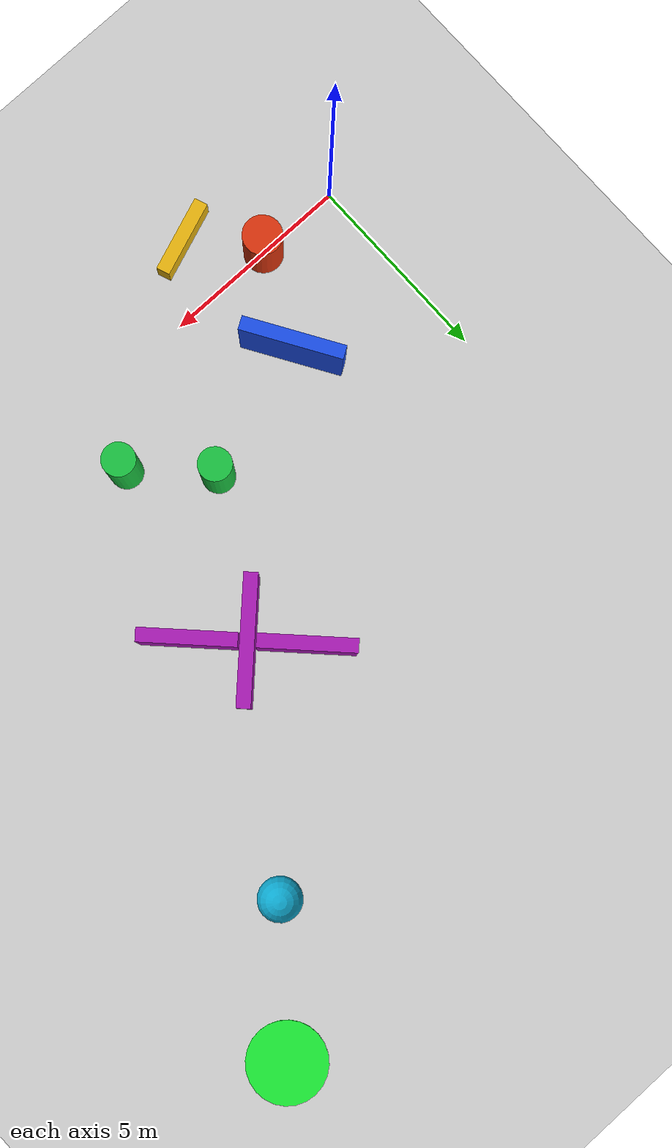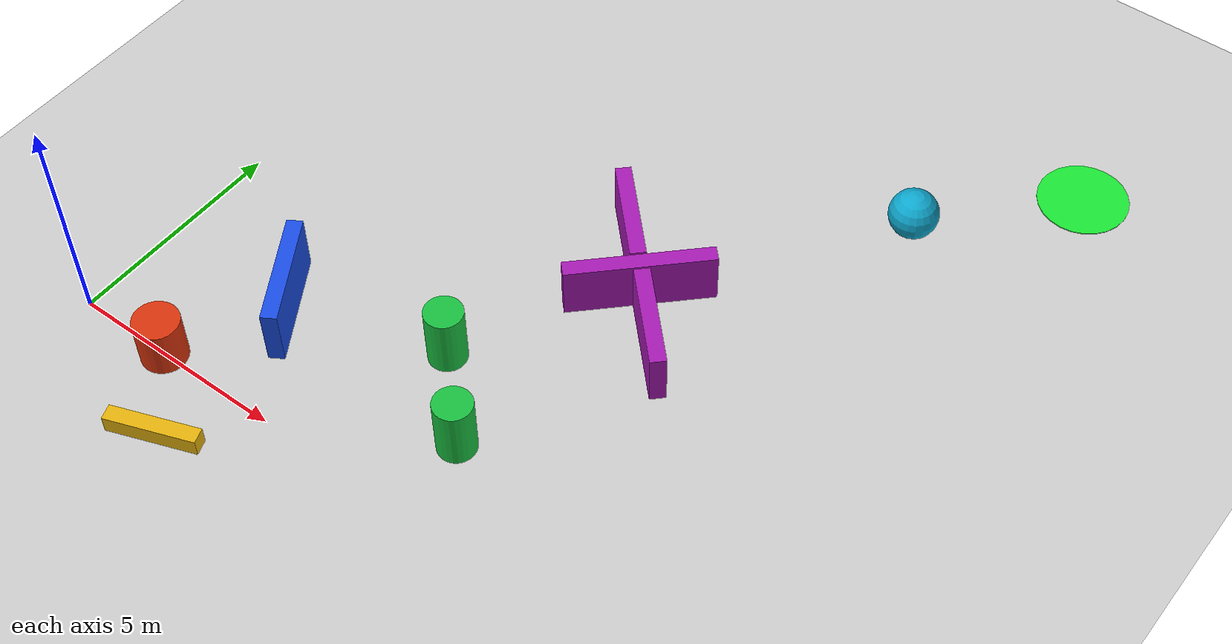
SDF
<?xml version="1.0"?>
<sdf version="1.6"><world name="stress_course">
  <include><uri>model://ground_plane</uri></include><include><uri>model://sun</uri></include>
  <physics type="ode"><real_time_update_rate>500</real_time_update_rate></physics>
  <gui><camera name="overview"><pose>-7 -11 16 0 0.72 0.62</pose><view_controller>orbit</view_controller></camera></gui>
  <model name="round_boulder"><static>true</static><pose>2.2 0 0.55 0 0 0</pose><link name="link">
    <collision name="collision"><geometry><cylinder><radius>0.5</radius><length>1.1</length></cylinder></geometry></collision>
    <visual name="visual"><geometry><cylinder><radius>0.5</radius><length>1.1</length></cylinder></geometry><material><ambient>0.85 0.2 0.05 1</ambient><diffuse>0.85 0.2 0.05 1</diffuse></material></visual>
  </link></model>
  <model name="low_curb"><static>true</static><pose>3.5 -1.55 0.2 0 0 0.35</pose><link name="link">
    <collision name="collision"><geometry><box><size>2.0 0.35 0.4</size></box></geometry></collision>
    <visual name="visual"><geometry><box><size>2.0 0.35 0.4</size></box></geometry><material><ambient>0.9 0.7 0.05 1</ambient><diffuse>0.9 0.7 0.05 1</diffuse></material></visual>
  </link></model>
  <model name="angled_wall"><static>true</static><pose>3.4 2.4 0.65 0 0 0.55</pose><link name="link">
    <collision name="collision"><geometry><box><size>0.35 2.6 1.3</size></box></geometry></collision>
    <visual name="visual"><geometry><box><size>0.35 2.6 1.3</size></box></geometry><material><ambient>0.1 0.3 0.9 1</ambient><diffuse>0.1 0.3 0.9 1</diffuse></material></visual>
  </link></model>
  <model name="gate_left"><static>true</static><pose>6.8 3.45 0.7 0 0 0</pose><link name="link">
    <collision name="collision"><geometry><cylinder><radius>0.42</radius><length>1.4</length></cylinder></geometry></collision>
    <visual name="visual"><geometry><cylinder><radius>0.42</radius><length>1.4</length></cylinder></geometry><material><ambient>0.1 0.75 0.25 1</ambient><diffuse>0.1 0.75 0.25 1</diffuse></material></visual>
  </link></model>
  <model name="gate_right"><static>true</static><pose>8.4 1.85 0.7 0 0 0</pose><link name="link">
    <collision name="collision"><geometry><cylinder><radius>0.42</radius><length>1.4</length></cylinder></geometry></collision>
    <visual name="visual"><geometry><cylinder><radius>0.42</radius><length>1.4</length></cylinder></geometry><material><ambient>0.1 0.75 0.25 1</ambient><diffuse>0.1 0.75 0.25 1</diffuse></material></visual>
  </link></model>
  <model name="concave_back"><static>true</static><pose>9.0 7.0 0.6 0 0 0.78</pose><link name="link">
    <collision name="collision"><geometry><box><size>3.2 0.35 1.2</size></box></geometry></collision>
    <visual name="visual"><geometry><box><size>3.2 0.35 1.2</size></box></geometry><material><ambient>0.65 0.1 0.7 1</ambient><diffuse>0.65 0.1 0.7 1</diffuse></material></visual>
  </link></model>
  <model name="concave_left"><static>true</static><pose>8.0 8.0 0.6 0 0 0.78</pose><link name="link">
    <collision name="collision"><geometry><box><size>0.35 2.4 1.2</size></box></geometry></collision>
    <visual name="visual"><geometry><box><size>0.35 2.4 1.2</size></box></geometry><material><ambient>0.65 0.1 0.7 1</ambient><diffuse>0.65 0.1 0.7 1</diffuse></material></visual>
  </link></model>
  <model name="concave_right"><static>true</static><pose>10.0 6.0 0.6 0 0 0.78</pose><link name="link">
    <collision name="collision"><geometry><box><size>0.35 2.4 1.2</size></box></geometry></collision>
    <visual name="visual"><geometry><box><size>0.35 2.4 1.2</size></box></geometry><material><ambient>0.65 0.1 0.7 1</ambient><diffuse>0.65 0.1 0.7 1</diffuse></material></visual>
  </link></model>
  <model name="final_sphere"><static>true</static><pose>12.5 12.0 0.55 0 0 0</pose><link name="link">
    <collision name="collision"><geometry><sphere><radius>0.55</radius></sphere></geometry></collision>
    <visual name="visual"><geometry><sphere><radius>0.55</radius></sphere></geometry><material><ambient>0.05 0.65 0.8 1</ambient><diffuse>0.05 0.65 0.8 1</diffuse></material></visual>
  </link></model>
<model name="finish"><static>true</static><pose>15 15 0.015 0 0 0</pose><link name="marker"><visual name="finish"><geometry><cylinder><radius>1</radius><length>0.02</length></cylinder></geometry><material><ambient>0.1 0.9 0.2 1</ambient><diffuse>0.1 0.9 0.2 1</diffuse></material></visual></link></model>
</world></sdf>
